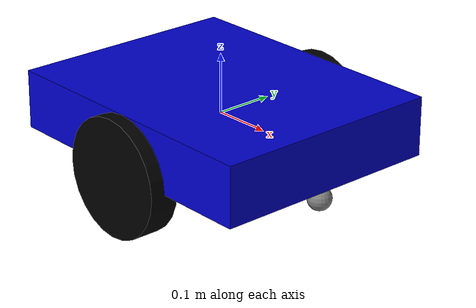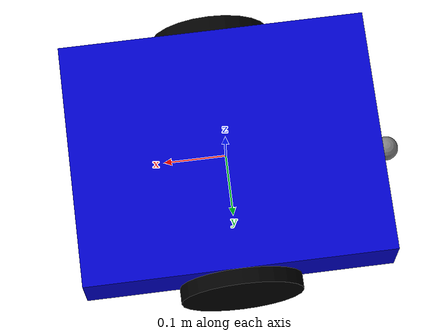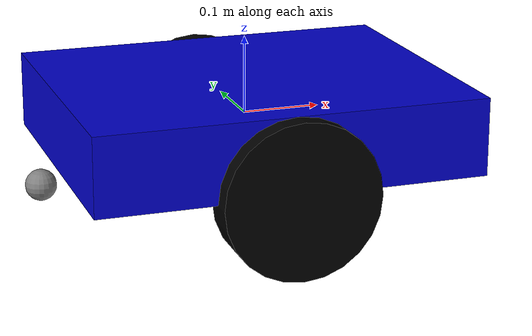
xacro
<?xml version="1.0"?>
<robot name="my_robot" xmlns:xacro="http://www.ros.org/wiki/xacro">

  <!-- Properties/Macros -->
  <xacro:property name="base_width" value="0.4"/>
  <xacro:property name="base_length" value="0.5"/>
  <xacro:property name="base_height" value="0.1"/>

  <xacro:property name="wheel_radius" value="0.1"/>
  <xacro:property name="wheel_width" value="0.05"/>
  <xacro:property name="wheel_separation" value="0.4"/>

  <xacro:property name="caster_radius" value="0.02"/>

  <!-- Colors -->
  <material name="blue">
    <color rgba="0 0 0.8 1"/>
  </material>
  <material name="black">
    <color rgba="0 0 0 1"/>
  </material>
  <material name="grey">
    <color rgba="0.5 0.5 0.5 1"/>
  </material>

  <!-- Base Link -->
  <link name="base_link">
    <inertial>
      <mass value="2.0"/>
      <inertia ixx="0.02" ixy="0.0" ixz="0.0" iyy="0.03" iyz="0.0" izz="0.02"/>
    </inertial>
    <visual>
      <geometry>
        <box size="${base_length} ${base_width} ${base_height}"/>
      </geometry>
      <material name="blue"/>
    </visual>
    <collision>
      <geometry>
        <box size="${base_length} ${base_width} ${base_height}"/>
      </geometry>
    </collision>
  </link>

  <!-- Left Wheel -->
  <link name="left_wheel">
    <inertial>
      <mass value="0.5"/>
      <inertia ixx="0.001" ixy="0.0" ixz="0.0" iyy="0.001" iyz="0.0" izz="0.001"/>
    </inertial>
    <visual>
      <geometry>
        <cylinder radius="${wheel_radius}" length="${wheel_width}"/>
      </geometry>
      <material name="black"/>
    </visual>
    <collision>
      <geometry>
        <cylinder radius="${wheel_radius}" length="${wheel_width}"/>
      </geometry>
    </collision>
  </link>

  <!-- Right Wheel -->
  <link name="right_wheel">
    <inertial>
      <mass value="0.5"/>
      <inertia ixx="0.001" ixy="0.0" ixz="0.0" iyy="0.001" iyz="0.0" izz="0.001"/>
    </inertial>
    <visual>
      <geometry>
        <cylinder radius="${wheel_radius}" length="${wheel_width}"/>
      </geometry>
      <material name="black"/>
    </visual>
    <collision>
      <geometry>
        <cylinder radius="${wheel_radius}" length="${wheel_width}"/>
      </geometry>
    </collision>
  </link>

  <!-- Front Caster -->
  <link name="front_caster">
    <inertial>
      <mass value="0.1"/>
      <inertia ixx="0.0001" ixy="0.0" ixz="0.0" iyy="0.0001" iyz="0.0" izz="0.0001"/>
    </inertial>
    <visual>
      <geometry>
        <sphere radius="${caster_radius}"/>
      </geometry>
      <material name="grey"/>
    </visual>
    <collision>
      <geometry>
        <sphere radius="${caster_radius}"/>
      </geometry>
    </collision>
  </link>

  <!-- Back Caster -->
  <link name="back_caster">
    <inertial>
      <mass value="0.1"/>
      <inertia ixx="0.0001" ixy="0.0" ixz="0.0" iyy="0.0001" iyz="0.0" izz="0.0001"/>
    </inertial>
    <visual>
      <geometry>
        <sphere radius="${caster_radius}"/>
      </geometry>
      <material name="grey"/>
    </visual>
    <collision>
      <geometry>
        <sphere radius="${caster_radius}"/>
      </geometry>
    </collision>
  </link>

  <!-- Joints -->
  <joint name="left_wheel_joint" type="continuous">
    <parent link="base_link"/>
    <child link="left_wheel"/>
    <origin xyz="0 ${wheel_separation/2} -${base_height/2}" rpy="-${pi/2} 0 0"/>
    <axis xyz="0 1 0"/>
    <dynamics damping="0.1" friction="0.1"/>
  </joint>

  <joint name="right_wheel_joint" type="continuous">
    <parent link="base_link"/>
    <child link="right_wheel"/>
    <origin xyz="0 -${wheel_separation/2} -${base_height/2}" rpy="-${pi/2} 0 0"/>
    <axis xyz="0 1 0"/>
    <dynamics damping="0.1" friction="0.1"/>
  </joint>

  <joint name="front_caster_joint" type="fixed">
    <parent link="base_link"/>
    <child link="front_caster"/>
    <origin xyz="${base_length/2 - caster_radius} 0 -${base_height/2 + caster_radius}"/>
  </joint>

  <joint name="back_caster_joint" type="fixed">
    <parent link="base_link"/>
    <child link="back_caster"/>
    <origin xyz="-${base_length/2 + caster_radius} 0 -${base_height/2 + caster_radius}"/>
  </joint>

  <!-- Direct Gazebo Diff Drive Plugin -->
  <gazebo>
    <plugin name="diff_drive_controller" filename="libgazebo_ros_diff_drive.so">
      <ros>
        <namespace>/</namespace>
      </ros>
      <left_joint>left_wheel_joint</left_joint>
      <right_joint>right_wheel_joint</right_joint>
      <wheel_separation>${wheel_separation}</wheel_separation>
      <wheel_diameter>${wheel_radius*2}</wheel_diameter>
      <max_wheel_torque>20</max_wheel_torque>
      <max_wheel_acceleration>10.0</max_wheel_acceleration>
      <command_topic>/cmd_vel</command_topic>
      <odometry_topic>/odom</odometry_topic>
      <odometry_frame>odom</odometry_frame>
      <robot_base_frame>base_link</robot_base_frame>
      <publish_odom>true</publish_odom>
      <publish_odom_tf>true</publish_odom_tf>
      <publish_wheel_tf>true</publish_wheel_tf>
    </plugin>
  </gazebo>

  <!-- Add color to Gazebo -->
  <gazebo reference="base_link">
    <material>Gazebo/Blue</material>
  </gazebo>

  <gazebo reference="left_wheel">
    <material>Gazebo/Black</material>
  </gazebo>

  <gazebo reference="right_wheel">
    <material>Gazebo/Black</material>
  </gazebo>

  <gazebo reference="front_caster">
    <material>Gazebo/Grey</material>
  </gazebo>

  <gazebo reference="back_caster">
    <material>Gazebo/Grey</material>
  </gazebo>

</robot>
